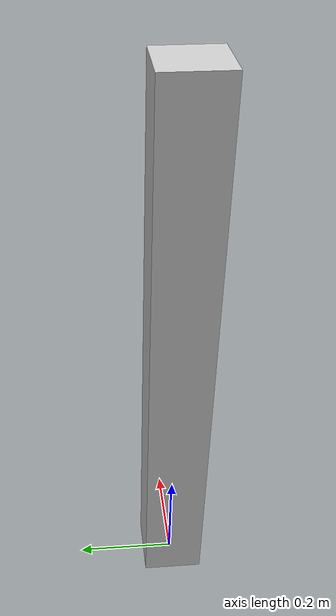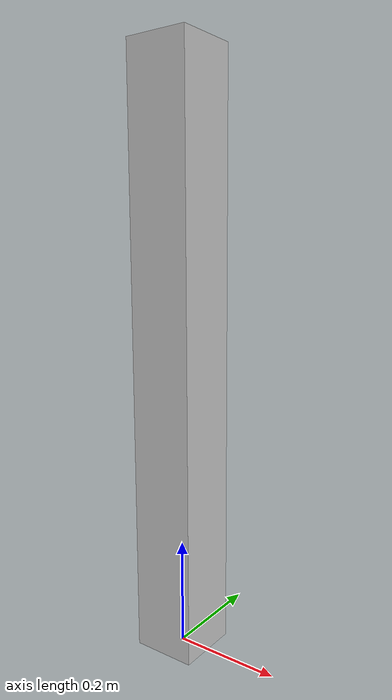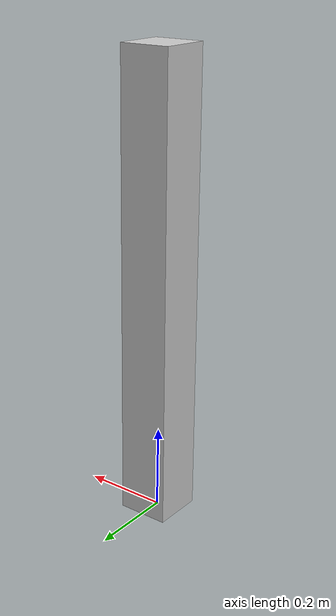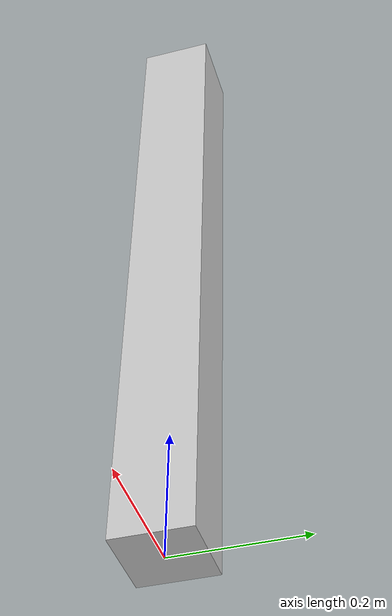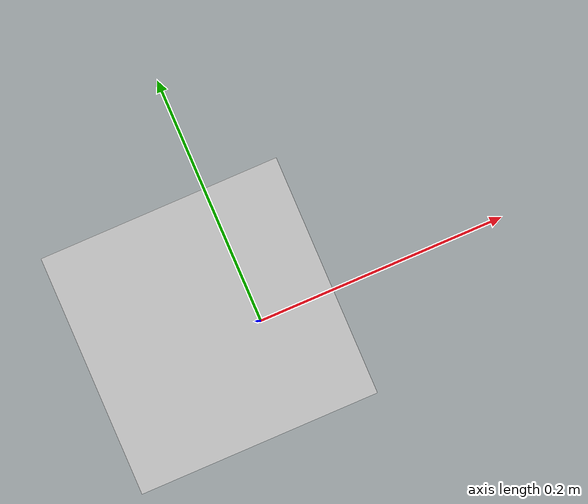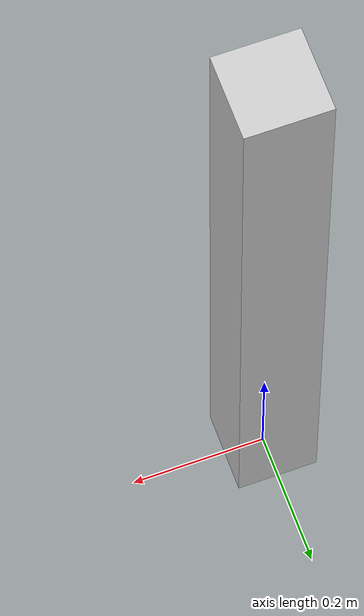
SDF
<?xml version="1.0"?>
<sdf version="1.6">
  <model name="rgo2015/bar_table/legs">
    <link name="1_link">
      <collision name="1_col">
        <geometry>
          <box>
            <size>0.12 0.12 1.09</size>
          </box>
        </geometry>
      </collision>
      <visual name="1_vis">
        <geometry>
          <box>
            <size>0.12 0.12 1.09</size>
          </box>
        </geometry>
        <material>
          <ambient>0.8 0.8 0.8 1</ambient>
        </material>
      </visual>
      <pose>-0.0 0.0 0.545 0 0 0</pose>
    </link>
    <static>true</static>
  </model>
</sdf>
